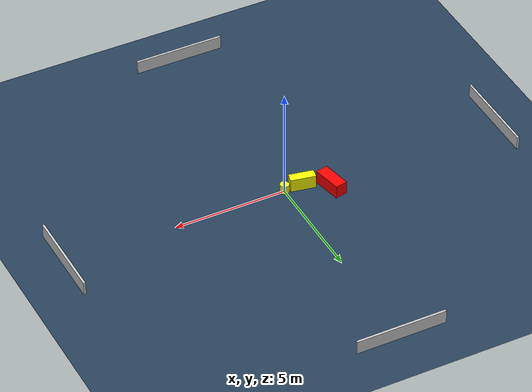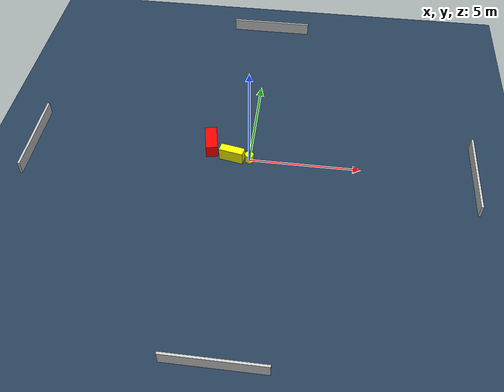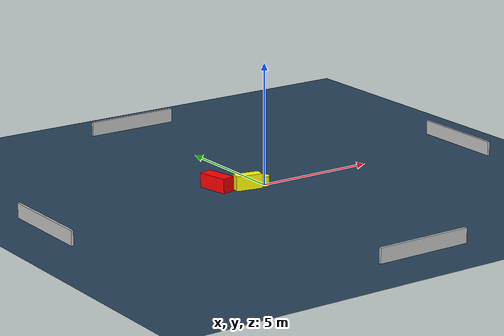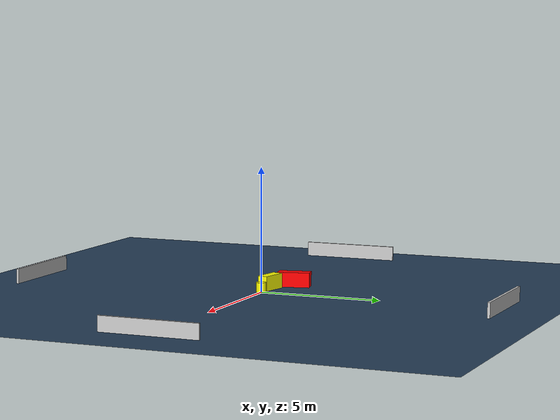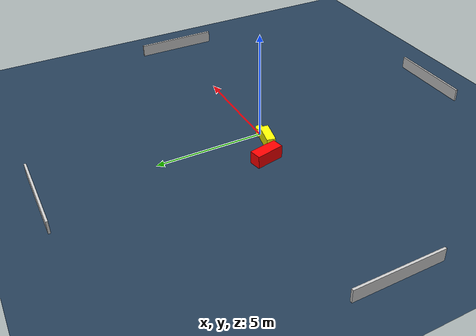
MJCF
<?xml version="1.0" ?>
<mujoco model="generated_environment">
  <option timestep="0.01" integrator="RK4" cone="elliptic"/>
  <default>
    <geom density="1"/>
  </default>
  <asset>
    <texture builtin="gradient" height="3072" name="skybox" rgb1="0.3 0.5 0.7" rgb2="0 0 0" type="skybox" width="512"/>
    <texture builtin="checker" height="300" name="groundplane" rgb1="0.2 0.3 0.4" rgb2="0.1 0.2 0.3" type="2d" width="300"/>
    <material name="groundplane" reflectance="0.2" texrepeat="5 5" texture="groundplane"/>
  </asset>
  <worldbody>
    <light dir="0 0 -1" directional="true" pos="0 0 1.5"/>
    <geom condim="3" friction="0.5 0.005 0.001" material="groundplane" name="floor" pos="0 0 0" size="0 0 0.05" type="plane"/>
    <body name="walls">
      <geom name="wall_1" condim="4" pos="-10.0 0.0 0.3" rgba="0.800000011920929 0.800000011920929 0.800000011920929 1.0" size="0.05 2.0 0.3" type="box"/>
      <geom name="wall_2" condim="4" pos="10.0 0.0 0.3" rgba="0.800000011920929 0.800000011920929 0.800000011920929 1.0" size="0.05 2.0 0.3" type="box"/>
      <geom name="wall_3" condim="4" pos="0.0 -10.0 0.3" rgba="0.800000011920929 0.800000011920929 0.800000011920929 1.0" size="2.0 0.05 0.3" type="box"/>
      <geom name="wall_4" condim="4" pos="0.0 10.0 0.3" rgba="0.800000011920929 0.800000011920929 0.800000011920929 1.0" size="2.0 0.05 0.3" type="box"/>
    </body>
    <body name="robot">
      <joint name="joint_x" type="slide" pos="0 0 0" axis="1 0 0"/>
      <joint name="joint_y" type="slide" pos="0 0 0" axis="0 1 0"/>
      <geom name="robot" type="cylinder" pos="0.0 0.0 0.2" size="0.2 0.2 0.0" mass="5.0" friction="1.0 0.005 0.0001" condim="4" rgba="1.0 1.0 0.0 1.0"/>
    </body>
    <body name="obstacle_1_movable">
      <geom name="obstacle_1_movable" condim="4" pos="-0.7957151726660431 0.04289675941381688 0.3" euler="0 0 259.040203048715" friction="0.0 0.005 0.001" rgba="1.0 1.0 0.0 1.0" size="0.20496457391860112 0.5534795777956351 0.3" type="box" mass="0.1"/>
      <joint type="free"/>
    </body>
    <body name="obstacle_2_static">
      <geom name="obstacle_2_static" condim="4" pos="-1.8397214092386807 0.669006275459976 0.3" euler="0 0 191.5200856091576" friction="0.0 0.005 0.001" rgba="1.0 0.0 0.0 1.0" size="0.27123066613579044 0.6525619860901732 0.3" type="box"/>
    </body>
  </worldbody>
  <actuator>
    <motor name="actuator_x" joint="joint_x" gear="1" ctrlrange="-1 1"/>
    <motor name="actuator_y" joint="joint_y" gear="1" ctrlrange="-1 1"/>
  </actuator>
</mujoco>
